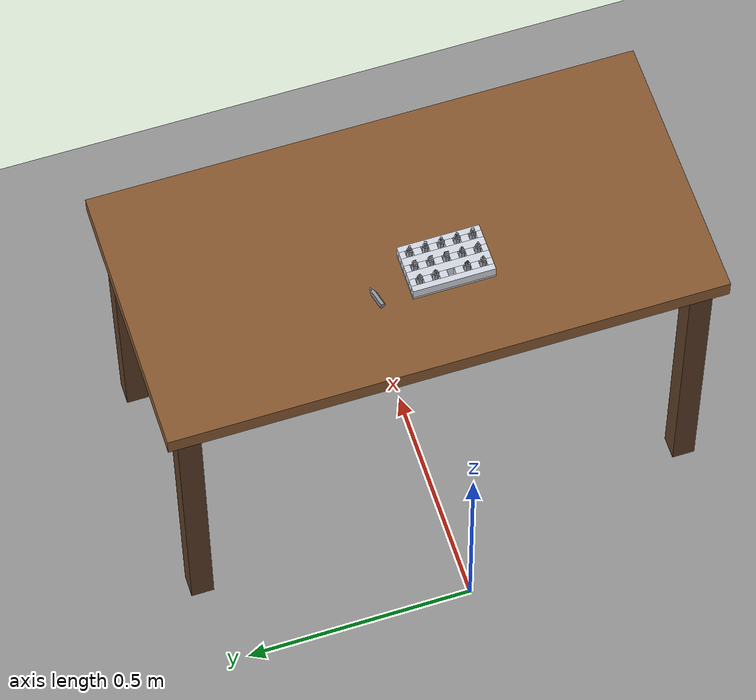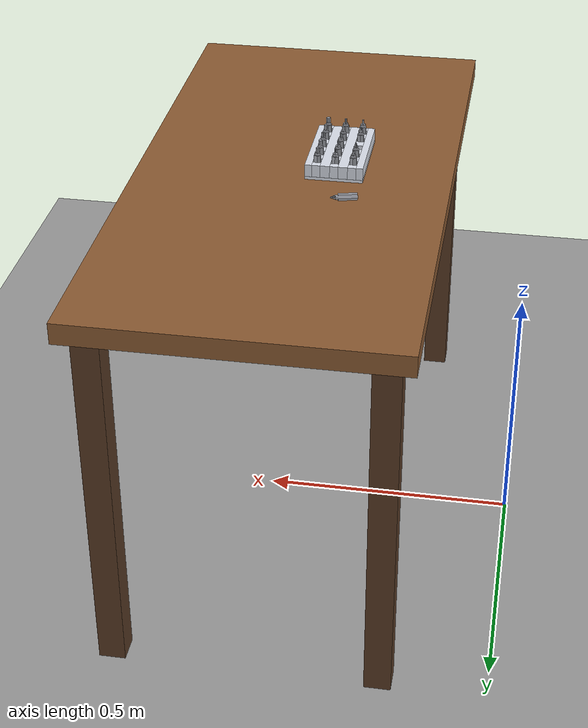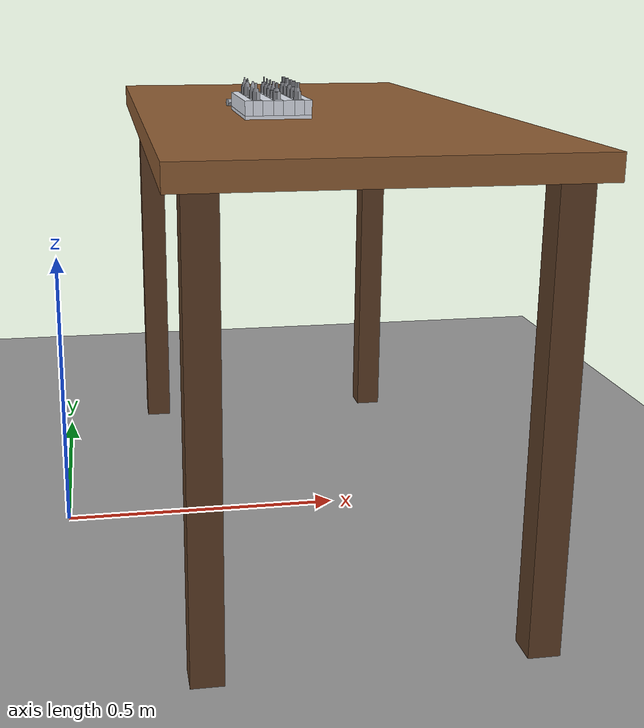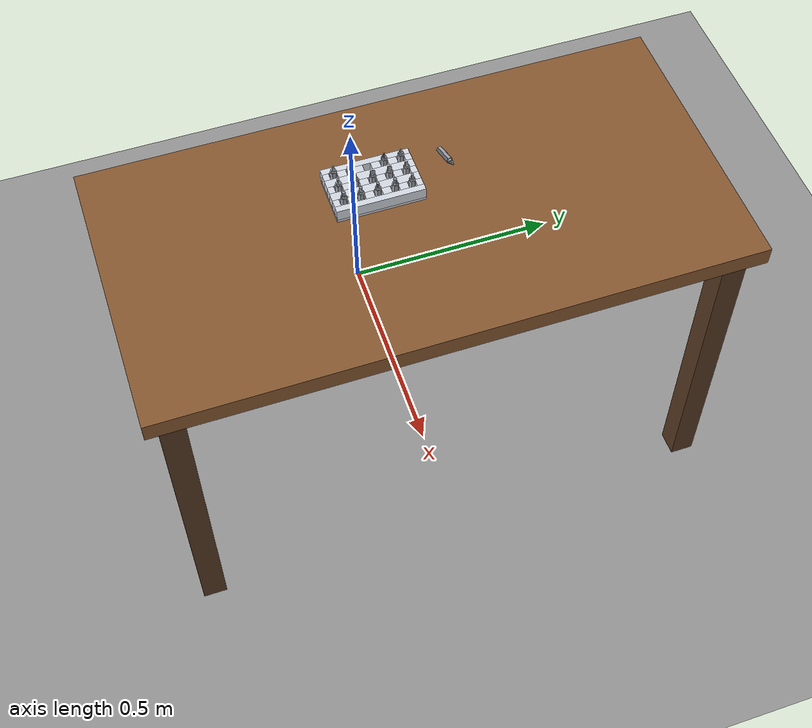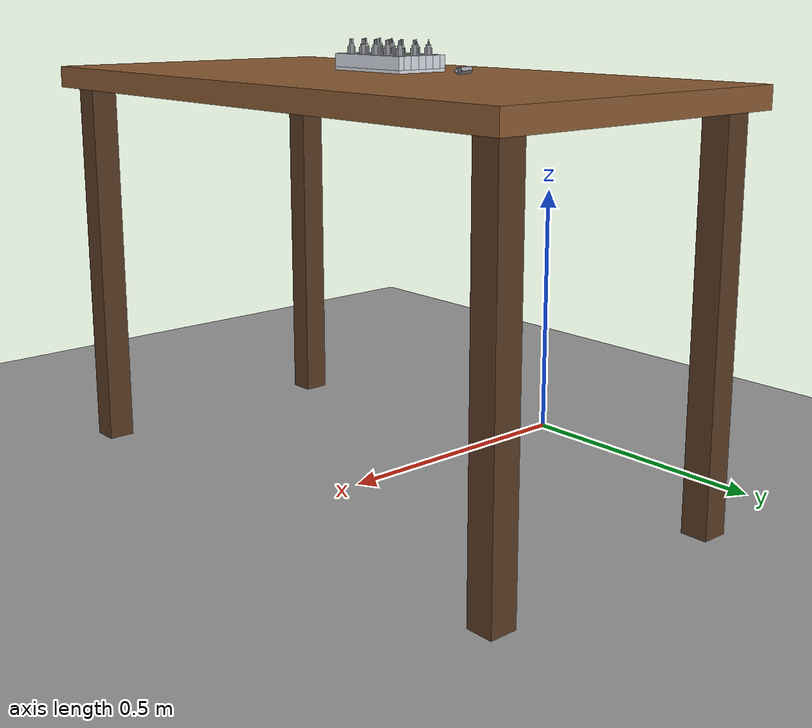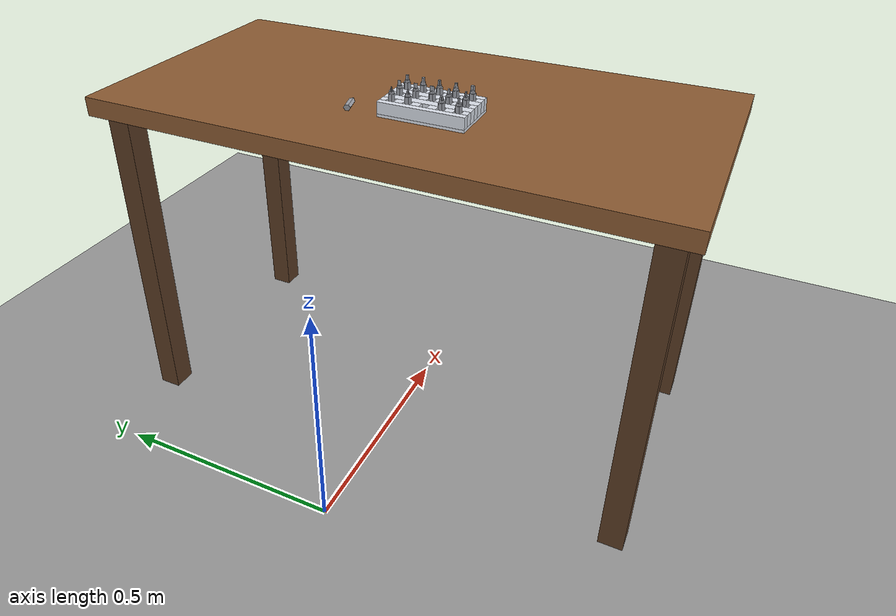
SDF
<?xml version="1.0"?>
<!-- Generated by scripts/generate_scene_assets.py - edit that script and re-run it. -->
<sdf version="1.9">
  <world name="g1_table_world">
    <physics name="1ms" type="ignored">
      <max_step_size>0.001</max_step_size>
      <real_time_factor>1.0</real_time_factor>
    </physics>

    <plugin filename="gz-sim-physics-system" name="gz::sim::systems::Physics"/>
    <plugin filename="gz-sim-user-commands-system" name="gz::sim::systems::UserCommands"/>
    <plugin filename="gz-sim-scene-broadcaster-system" name="gz::sim::systems::SceneBroadcaster"/>
    <plugin filename="gz-sim-sensors-system" name="gz::sim::systems::Sensors">
      <render_engine>ogre2</render_engine>
    </plugin>
    <plugin filename="gz-sim-imu-system" name="gz::sim::systems::Imu"/>

    <gravity>0 0 -9.81</gravity>

    <scene>
      <ambient>0.6 0.6 0.6 1</ambient>
      <background>0.75 0.8 0.85 1</background>
      <shadows>true</shadows>
    </scene>

    <light type="directional" name="sun">
      <cast_shadows>true</cast_shadows>
      <pose>0 0 10 0 0 0</pose>
      <diffuse>0.9 0.9 0.9 1</diffuse>
      <specular>0.3 0.3 0.3 1</specular>
      <direction>-0.4 0.3 -0.9</direction>
    </light>

    <model name="ground_plane">
      <static>true</static>
      <link name="link">
        <collision name="collision">
          <geometry><plane><normal>0 0 1</normal><size>50 50</size></plane></geometry>
          <surface><friction><ode><mu>1.0</mu><mu2>1.0</mu2></ode></friction></surface>
        </collision>
        <visual name="visual">
          <geometry><plane><normal>0 0 1</normal><size>50 50</size></plane></geometry>
          <material>
            <ambient>0.5 0.5 0.5 1</ambient>
            <diffuse>0.6 0.6 0.6 1</diffuse>
          </material>
        </visual>
      </link>
    </model>

    <!-- Table: 0.6 m deep (x) x 1.2 m wide (y), surface at z = 0.75 m, front edge at x = 0.15 m. -->
    <model name="table">
      <static>true</static>
      <pose>0.450 0 0 0 0 0</pose>
      <link name="link">
        <collision name="top_collision">
          <pose>0 0 0.730 0 0 0</pose>
          <geometry><box><size>0.6 1.2 0.04</size></box></geometry>
          <surface><friction><ode><mu>1.0</mu><mu2>1.0</mu2></ode></friction></surface>
        </collision>
        <visual name="top_visual">
          <pose>0 0 0.730 0 0 0</pose>
          <geometry><box><size>0.6 1.2 0.04</size></box></geometry>
          <material><ambient>0.45 0.3 0.18 1</ambient><diffuse>0.55 0.36 0.2 1</diffuse></material>
        </visual>
        <collision name="leg_fl_collision"><pose>0.250 0.550 0.355 0 0 0</pose><geometry><box><size>0.05 0.05 0.710</size></box></geometry></collision>
        <visual name="leg_fl_visual"><pose>0.250 0.550 0.355 0 0 0</pose><geometry><box><size>0.05 0.05 0.710</size></box></geometry><material><ambient>0.3 0.2 0.12 1</ambient><diffuse>0.35 0.23 0.14 1</diffuse></material></visual>
        <collision name="leg_fr_collision"><pose>0.250 -0.550 0.355 0 0 0</pose><geometry><box><size>0.05 0.05 0.710</size></box></geometry></collision>
        <visual name="leg_fr_visual"><pose>0.250 -0.550 0.355 0 0 0</pose><geometry><box><size>0.05 0.05 0.710</size></box></geometry><material><ambient>0.3 0.2 0.12 1</ambient><diffuse>0.35 0.23 0.14 1</diffuse></material></visual>
        <collision name="leg_bl_collision"><pose>-0.250 0.550 0.355 0 0 0</pose><geometry><box><size>0.05 0.05 0.710</size></box></geometry></collision>
        <visual name="leg_bl_visual"><pose>-0.250 0.550 0.355 0 0 0</pose><geometry><box><size>0.05 0.05 0.710</size></box></geometry><material><ambient>0.3 0.2 0.12 1</ambient><diffuse>0.35 0.23 0.14 1</diffuse></material></visual>
        <collision name="leg_br_collision"><pose>-0.250 -0.550 0.355 0 0 0</pose><geometry><box><size>0.05 0.05 0.710</size></box></geometry></collision>
        <visual name="leg_br_visual"><pose>-0.250 -0.550 0.355 0 0 0</pose><geometry><box><size>0.05 0.05 0.710</size></box></geometry><material><ambient>0.3 0.2 0.12 1</ambient><diffuse>0.35 0.23 0.14 1</diffuse></material></visual>
      </link>
    </model>

    <!-- Bit tray with one empty hole at (0.336, -0.060); the matching PH2 bit lies on the table. -->
    <include>
      <uri>model://bit_tray</uri>
      <name>bit_tray</name>
      <pose>0.3700 -0.0600 0.7505 0.0000 0.0000 0.0000</pose>
    </include>
    <include>
      <uri>model://screwdriver_bit_sq1</uri>
      <name>bit_sq1</name>
      <pose>0.3360 -0.1280 0.7570 0.0000 0.0000 0.0000</pose>
    </include>
    <include>
      <uri>model://screwdriver_bit_ph3</uri>
      <name>bit_ph3</name>
      <pose>0.3360 -0.0940 0.7570 0.0000 0.0000 0.0000</pose>
    </include>
    <include>
      <uri>model://screwdriver_bit_ph1</uri>
      <name>bit_ph1</name>
      <pose>0.3360 -0.0260 0.7570 0.0000 0.0000 0.0000</pose>
    </include>
    <include>
      <uri>model://screwdriver_bit_ph0</uri>
      <name>bit_ph0</name>
      <pose>0.3360 0.0080 0.7570 0.0000 0.0000 0.0000</pose>
    </include>
    <include>
      <uri>model://screwdriver_bit_h2</uri>
      <name>bit_h2</name>
      <pose>0.3700 -0.1280 0.7570 0.0000 0.0000 0.0000</pose>
    </include>
    <include>
      <uri>model://screwdriver_bit_sq2</uri>
      <name>bit_sq2</name>
      <pose>0.3700 -0.0940 0.7570 0.0000 0.0000 0.0000</pose>
    </include>
    <include>
      <uri>model://screwdriver_bit_sl5</uri>
      <name>bit_sl5</name>
      <pose>0.3700 -0.0600 0.7570 0.0000 0.0000 0.0000</pose>
    </include>
    <include>
      <uri>model://screwdriver_bit_sl4</uri>
      <name>bit_sl4</name>
      <pose>0.3700 -0.0260 0.7570 0.0000 0.0000 0.0000</pose>
    </include>
    <include>
      <uri>model://screwdriver_bit_sl3</uri>
      <name>bit_sl3</name>
      <pose>0.3700 0.0080 0.7570 0.0000 0.0000 0.0000</pose>
    </include>
    <include>
      <uri>model://screwdriver_bit_t20</uri>
      <name>bit_t20</name>
      <pose>0.4040 -0.1280 0.7570 0.0000 0.0000 0.0000</pose>
    </include>
    <include>
      <uri>model://screwdriver_bit_t15</uri>
      <name>bit_t15</name>
      <pose>0.4040 -0.0940 0.7570 0.0000 0.0000 0.0000</pose>
    </include>
    <include>
      <uri>model://screwdriver_bit_t10</uri>
      <name>bit_t10</name>
      <pose>0.4040 -0.0600 0.7570 0.0000 0.0000 0.0000</pose>
    </include>
    <include>
      <uri>model://screwdriver_bit_h4</uri>
      <name>bit_h4</name>
      <pose>0.4040 -0.0260 0.7570 0.0000 0.0000 0.0000</pose>
    </include>
    <include>
      <uri>model://screwdriver_bit_h3</uri>
      <name>bit_h3</name>
      <pose>0.4040 0.0080 0.7570 0.0000 0.0000 0.0000</pose>
    </include>
    <include>
      <uri>model://screwdriver_bit_ph2</uri>
      <name>bit_ph2_loose</name>
      <pose>0.3158 0.0938 0.7565 0.0000 1.5708 0.2500</pose>
    </include>
  </world>
</sdf>

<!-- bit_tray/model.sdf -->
<sdf version="1.9">
  <model name="bit_tray">
    <static>true</static>
    <link name="link">
      <inertial>
        <pose>0 0 0.0150 0 0 0</pose>
        <mass>0.3</mass>
        <inertia><ixx>8.146e-04</ixx><iyy>3.250e-04</iyy><izz>1.095e-03</izz><ixy>0</ixy><ixz>0</ixz><iyz>0</iyz></inertia>
      </inertial>
      <collision name="c0"><pose>0.0000 0.0000 0.0030 0 0 0</pose><geometry><box><size>0.1100 0.1780 0.0060</size></box></geometry>
        <surface><friction><ode><mu>0.8</mu><mu2>0.8</mu2></ode></friction></surface>
      </collision>
      <visual name="v0"><pose>0.0000 0.0000 0.0030 0 0 0</pose><geometry><box><size>0.1100 0.1780 0.0060</size></box></geometry>
        <material><ambient>0.72 0.74 0.78 1</ambient><diffuse>0.86 0.88 0.92 1</diffuse><specular>0.3 0.3 0.3 1</specular></material>
      </visual>
      <collision name="c1"><pose>-0.0485 0.0000 0.0180 0 0 0</pose><geometry><box><size>0.0130 0.1780 0.0240</size></box></geometry>
        <surface><friction><ode><mu>0.8</mu><mu2>0.8</mu2></ode></friction></surface>
      </collision>
      <visual name="v1"><pose>-0.0485 0.0000 0.0180 0 0 0</pose><geometry><box><size>0.0130 0.1780 0.0240</size></box></geometry>
        <material><ambient>0.72 0.74 0.78 1</ambient><diffuse>0.86 0.88 0.92 1</diffuse><specular>0.3 0.3 0.3 1</specular></material>
      </visual>
      <collision name="c2"><pose>-0.0170 0.0000 0.0180 0 0 0</pose><geometry><box><size>0.0180 0.1780 0.0240</size></box></geometry>
        <surface><friction><ode><mu>0.8</mu><mu2>0.8</mu2></ode></friction></surface>
      </collision>
      <visual name="v2"><pose>-0.0170 0.0000 0.0180 0 0 0</pose><geometry><box><size>0.0180 0.1780 0.0240</size></box></geometry>
        <material><ambient>0.72 0.74 0.78 1</ambient><diffuse>0.86 0.88 0.92 1</diffuse><specular>0.3 0.3 0.3 1</specular></material>
      </visual>
      <collision name="c3"><pose>0.0170 0.0000 0.0180 0 0 0</pose><geometry><box><size>0.0180 0.1780 0.0240</size></box></geometry>
        <surface><friction><ode><mu>0.8</mu><mu2>0.8</mu2></ode></friction></surface>
      </collision>
      <visual name="v3"><pose>0.0170 0.0000 0.0180 0 0 0</pose><geometry><box><size>0.0180 0.1780 0.0240</size></box></geometry>
        <material><ambient>0.72 0.74 0.78 1</ambient><diffuse>0.86 0.88 0.92 1</diffuse><specular>0.3 0.3 0.3 1</specular></material>
      </visual>
      <collision name="c4"><pose>0.0485 0.0000 0.0180 0 0 0</pose><geometry><box><size>0.0130 0.1780 0.0240</size></box></geometry>
        <surface><friction><ode><mu>0.8</mu><mu2>0.8</mu2></ode></friction></surface>
      </collision>
      <visual name="v4"><pose>0.0485 0.0000 0.0180 0 0 0</pose><geometry><box><size>0.0130 0.1780 0.0240</size></box></geometry>
        <material><ambient>0.72 0.74 0.78 1</ambient><diffuse>0.86 0.88 0.92 1</diffuse><specular>0.3 0.3 0.3 1</specular></material>
      </visual>
      <collision name="c5"><pose>-0.0340 -0.0825 0.0180 0 0 0</pose><geometry><box><size>0.0160 0.0130 0.0240</size></box></geometry>
        <surface><friction><ode><mu>0.8</mu><mu2>0.8</mu2></ode></friction></surface>
      </collision>
      <visual name="v5"><pose>-0.0340 -0.0825 0.0180 0 0 0</pose><geometry><box><size>0.0160 0.0130 0.0240</size></box></geometry>
        <material><ambient>0.72 0.74 0.78 1</ambient><diffuse>0.86 0.88 0.92 1</diffuse><specular>0.3 0.3 0.3 1</specular></material>
      </visual>
      <collision name="c6"><pose>-0.0340 -0.0510 0.0180 0 0 0</pose><geometry><box><size>0.0160 0.0180 0.0240</size></box></geometry>
        <surface><friction><ode><mu>0.8</mu><mu2>0.8</mu2></ode></friction></surface>
      </collision>
      <visual name="v6"><pose>-0.0340 -0.0510 0.0180 0 0 0</pose><geometry><box><size>0.0160 0.0180 0.0240</size></box></geometry>
        <material><ambient>0.72 0.74 0.78 1</ambient><diffuse>0.86 0.88 0.92 1</diffuse><specular>0.3 0.3 0.3 1</specular></material>
      </visual>
      <collision name="c7"><pose>-0.0340 -0.0170 0.0180 0 0 0</pose><geometry><box><size>0.0160 0.0180 0.0240</size></box></geometry>
        <surface><friction><ode><mu>0.8</mu><mu2>0.8</mu2></ode></friction></surface>
      </collision>
      <visual name="v7"><pose>-0.0340 -0.0170 0.0180 0 0 0</pose><geometry><box><size>0.0160 0.0180 0.0240</size></box></geometry>
        <material><ambient>0.72 0.74 0.78 1</ambient><diffuse>0.86 0.88 0.92 1</diffuse><specular>0.3 0.3 0.3 1</specular></material>
      </visual>
      <collision name="c8"><pose>-0.0340 0.0170 0.0180 0 0 0</pose><geometry><box><size>0.0160 0.0180 0.0240</size></box></geometry>
        <surface><friction><ode><mu>0.8</mu><mu2>0.8</mu2></ode></friction></surface>
      </collision>
      <visual name="v8"><pose>-0.0340 0.0170 0.0180 0 0 0</pose><geometry><box><size>0.0160 0.0180 0.0240</size></box></geometry>
        <material><ambient>0.72 0.74 0.78 1</ambient><diffuse>0.86 0.88 0.92 1</diffuse><specular>0.3 0.3 0.3 1</specular></material>
      </visual>
      <collision name="c9"><pose>-0.0340 0.0510 0.0180 0 0 0</pose><geometry><box><size>0.0160 0.0180 0.0240</size></box></geometry>
        <surface><friction><ode><mu>0.8</mu><mu2>0.8</mu2></ode></friction></surface>
      </collision>
      <visual name="v9"><pose>-0.0340 0.0510 0.0180 0 0 0</pose><geometry><box><size>0.0160 0.0180 0.0240</size></box></geometry>
        <material><ambient>0.72 0.74 0.78 1</ambient><diffuse>0.86 0.88 0.92 1</diffuse><specular>0.3 0.3 0.3 1</specular></material>
      </visual>
      <collision name="c10"><pose>-0.0340 0.0825 0.0180 0 0 0</pose><geometry><box><size>0.0160 0.0130 0.0240</size></box></geometry>
        <surface><friction><ode><mu>0.8</mu><mu2>0.8</mu2></ode></friction></surface>
      </collision>
      <visual name="v10"><pose>-0.0340 0.0825 0.0180 0 0 0</pose><geometry><box><size>0.0160 0.0130 0.0240</size></box></geometry>
        <material><ambient>0.72 0.74 0.78 1</ambient><diffuse>0.86 0.88 0.92 1</diffuse><specular>0.3 0.3 0.3 1</specular></material>
      </visual>
      <collision name="c11"><pose>0.0000 -0.0825 0.0180 0 0 0</pose><geometry><box><size>0.0160 0.0130 0.0240</size></box></geometry>
        <surface><friction><ode><mu>0.8</mu><mu2>0.8</mu2></ode></friction></surface>
      </collision>
      <visual name="v11"><pose>0.0000 -0.0825 0.0180 0 0 0</pose><geometry><box><size>0.0160 0.0130 0.0240</size></box></geometry>
        <material><ambient>0.72 0.74 0.78 1</ambient><diffuse>0.86 0.88 0.92 1</diffuse><specular>0.3 0.3 0.3 1</specular></material>
      </visual>
      <collision name="c12"><pose>0.0000 -0.0510 0.0180 0 0 0</pose><geometry><box><size>0.0160 0.0180 0.0240</size></box></geometry>
        <surface><friction><ode><mu>0.8</mu><mu2>0.8</mu2></ode></friction></surface>
      </collision>
      <visual name="v12"><pose>0.0000 -0.0510 0.0180 0 0 0</pose><geometry><box><size>0.0160 0.0180 0.0240</size></box></geometry>
        <material><ambient>0.72 0.74 0.78 1</ambient><diffuse>0.86 0.88 0.92 1</diffuse><specular>0.3 0.3 0.3 1</specular></material>
      </visual>
      <collision name="c13"><pose>0.0000 -0.0170 0.0180 0 0 0</pose><geometry><box><size>0.0160 0.0180 0.0240</size></box></geometry>
        <surface><friction><ode><mu>0.8</mu><mu2>0.8</mu2></ode></friction></surface>
      </collision>
      <visual name="v13"><pose>0.0000 -0.0170 0.0180 0 0 0</pose><geometry><box><size>0.0160 0.0180 0.0240</size></box></geometry>
        <material><ambient>0.72 0.74 0.78 1</ambient><diffuse>0.86 0.88 0.92 1</diffuse><specular>0.3 0.3 0.3 1</specular></material>
      </visual>
      <collision name="c14"><pose>0.0000 0.0170 0.0180 0 0 0</pose><geometry><box><size>0.0160 0.0180 0.0240</size></box></geometry>
        <surface><friction><ode><mu>0.8</mu><mu2>0.8</mu2></ode></friction></surface>
      </collision>
      <visual name="v14"><pose>0.0000 0.0170 0.0180 0 0 0</pose><geometry><box><size>0.0160 0.0180 0.0240</size></box></geometry>
        <material><ambient>0.72 0.74 0.78 1</ambient><diffuse>0.86 0.88 0.92 1</diffuse><specular>0.3 0.3 0.3 1</specular></material>
      </visual>
      <collision name="c15"><pose>0.0000 0.0510 0.0180 0 0 0</pose><geometry><box><size>0.0160 0.0180 0.0240</size></box></geometry>
        <surface><friction><ode><mu>0.8</mu><mu2>0.8</mu2></ode></friction></surface>
      </collision>
      <visual name="v15"><pose>0.0000 0.0510 0.0180 0 0 0</pose><geometry><box><size>0.0160 0.0180 0.0240</size></box></geometry>
        <material><ambient>0.72 0.74 0.78 1</ambient><diffuse>0.86 0.88 0.92 1</diffuse><specular>0.3 0.3 0.3 1</specular></material>
      </visual>
      <collision name="c16"><pose>0.0000 0.0825 0.0180 0 0 0</pose><geometry><box><size>0.0160 0.0130 0.0240</size></box></geometry>
        <surface><friction><ode><mu>0.8</mu><mu2>0.8</mu2></ode></friction></surface>
      </collision>
      <visual name="v16"><pose>0.0000 0.0825 0.0180 0 0 0</pose><geometry><box><size>0.0160 0.0130 0.0240</size></box></geometry>
        <material><ambient>0.72 0.74 0.78 1</ambient><diffuse>0.86 0.88 0.92 1</diffuse><specular>0.3 0.3 0.3 1</specular></material>
      </visual>
      <collision name="c17"><pose>0.0340 -0.0825 0.0180 0 0 0</pose><geometry><box><size>0.0160 0.0130 0.0240</size></box></geometry>
        <surface><friction><ode><mu>0.8</mu><mu2>0.8</mu2></ode></friction></surface>
      </collision>
      <visual name="v17"><pose>0.0340 -0.0825 0.0180 0 0 0</pose><geometry><box><size>0.0160 0.0130 0.0240</size></box></geometry>
        <material><ambient>0.72 0.74 0.78 1</ambient><diffuse>0.86 0.88 0.92 1</diffuse><specular>0.3 0.3 0.3 1</specular></material>
      </visual>
      <collision name="c18"><pose>0.0340 -0.0510 0.0180 0 0 0</pose><geometry><box><size>0.0160 0.0180 0.0240</size></box></geometry>
        <surface><friction><ode><mu>0.8</mu><mu2>0.8</mu2></ode></friction></surface>
      </collision>
      <visual name="v18"><pose>0.0340 -0.0510 0.0180 0 0 0</pose><geometry><box><size>0.0160 0.0180 0.0240</size></box></geometry>
        <material><ambient>0.72 0.74 0.78 1</ambient><diffuse>0.86 0.88 0.92 1</diffuse><specular>0.3 0.3 0.3 1</specular></material>
      </visual>
      <collision name="c19"><pose>0.0340 -0.0170 0.0180 0 0 0</pose><geometry><box><size>0.0160 0.0180 0.0240</size></box></geometry>
        <surface><friction><ode><mu>0.8</mu><mu2>0.8</mu2></ode></friction></surface>
      </collision>
      <visual name="v19"><pose>0.0340 -0.0170 0.0180 0 0 0</pose><geometry><box><size>0.0160 0.0180 0.0240</size></box></geometry>
        <material><ambient>0.72 0.74 0.78 1</ambient><diffuse>0.86 0.88 0.92 1</diffuse><specular>0.3 0.3 0.3 1</specular></material>
      </visual>
      <collision name="c20"><pose>0.0340 0.0170 0.0180 0 0 0</pose><geometry><box><size>0.0160 0.0180 0.0240</size></box></geometry>
        <surface><friction><ode><mu>0.8</mu><mu2>0.8</mu2></ode></friction></surface>
      </collision>
      <visual name="v20"><pose>0.0340 0.0170 0.0180 0 0 0</pose><geometry><box><size>0.0160 0.0180 0.0240</size></box></geometry>
        <material><ambient>0.72 0.74 0.78 1</ambient><diffuse>0.86 0.88 0.92 1</diffuse><specular>0.3 0.3 0.3 1</specular></material>
      </visual>
      <collision name="c21"><pose>0.0340 0.0510 0.0180 0 0 0</pose><geometry><box><size>0.0160 0.0180 0.0240</size></box></geometry>
        <surface><friction><ode><mu>0.8</mu><mu2>0.8</mu2></ode></friction></surface>
      </collision>
      <visual name="v21"><pose>0.0340 0.0510 0.0180 0 0 0</pose><geometry><box><size>0.0160 0.0180 0.0240</size></box></geometry>
        <material><ambient>0.72 0.74 0.78 1</ambient><diffuse>0.86 0.88 0.92 1</diffuse><specular>0.3 0.3 0.3 1</specular></material>
      </visual>
      <collision name="c22"><pose>0.0340 0.0825 0.0180 0 0 0</pose><geometry><box><size>0.0160 0.0130 0.0240</size></box></geometry>
        <surface><friction><ode><mu>0.8</mu><mu2>0.8</mu2></ode></friction></surface>
      </collision>
      <visual name="v22"><pose>0.0340 0.0825 0.0180 0 0 0</pose><geometry><box><size>0.0160 0.0130 0.0240</size></box></geometry>
        <material><ambient>0.72 0.74 0.78 1</ambient><diffuse>0.86 0.88 0.92 1</diffuse><specular>0.3 0.3 0.3 1</specular></material>
      </visual>
    </link>
  </model>
</sdf>

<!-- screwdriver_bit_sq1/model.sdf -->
<sdf version="1.9">
  <model name="screwdriver_bit_sq1">
    <link name="link">
      <inertial>
        <pose>0 0 0.0250 0 0 0</pose>
        <mass>0.042</mass>
        <inertia><ixx>9.254e-06</ixx><iyy>9.254e-06</iyy><izz>1.008e-06</izz><ixy>0</ixy><ixz>0</ixz><iyz>0</iyz></inertia>
      </inertial>
      <collision name="shank_0">
        <pose>0 0 0.018 0 0 0.000000</pose>
        <geometry><box><size>0.012 0.006928 0.036</size></box></geometry>
        <surface><friction><ode><mu>0.8</mu><mu2>0.8</mu2></ode></friction></surface>
      </collision>
      <collision name="shank_1">
        <pose>0 0 0.018 0 0 1.047198</pose>
        <geometry><box><size>0.012 0.006928 0.036</size></box></geometry>
        <surface><friction><ode><mu>0.8</mu><mu2>0.8</mu2></ode></friction></surface>
      </collision>
      <collision name="shank_2">
        <pose>0 0 0.018 0 0 2.094395</pose>
        <geometry><box><size>0.012 0.006928 0.036</size></box></geometry>
        <surface><friction><ode><mu>0.8</mu><mu2>0.8</mu2></ode></friction></surface>
      </collision>
      <collision name="tip">
        <pose>0 0 0.043 0 0 0</pose>
        <geometry><cylinder><radius>0.0045</radius><length>0.014000000000000005</length></cylinder></geometry>
        <surface><friction><ode><mu>0.8</mu><mu2>0.8</mu2></ode></friction></surface>
      </collision>
      <visual name="visual">
        <geometry><mesh><uri>model://screwdriver_bit_sq1/meshes/bit_sq1.stl</uri></mesh></geometry>
        <material>
          <ambient>0.45 0.46 0.48 1</ambient>
          <diffuse>0.62 0.63 0.66 1</diffuse>
          <specular>0.8 0.8 0.8 1</specular>
        </material>
      </visual>
    </link>
  </model>
</sdf>

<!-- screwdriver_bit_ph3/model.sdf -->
<sdf version="1.9">
  <model name="screwdriver_bit_ph3">
    <link name="link">
      <inertial>
        <pose>0 0 0.0250 0 0 0</pose>
        <mass>0.042</mass>
        <inertia><ixx>9.254e-06</ixx><iyy>9.254e-06</iyy><izz>1.008e-06</izz><ixy>0</ixy><ixz>0</ixz><iyz>0</iyz></inertia>
      </inertial>
      <collision name="shank_0">
        <pose>0 0 0.018 0 0 0.000000</pose>
        <geometry><box><size>0.012 0.006928 0.036</size></box></geometry>
        <surface><friction><ode><mu>0.8</mu><mu2>0.8</mu2></ode></friction></surface>
      </collision>
      <collision name="shank_1">
        <pose>0 0 0.018 0 0 1.047198</pose>
        <geometry><box><size>0.012 0.006928 0.036</size></box></geometry>
        <surface><friction><ode><mu>0.8</mu><mu2>0.8</mu2></ode></friction></surface>
      </collision>
      <collision name="shank_2">
        <pose>0 0 0.018 0 0 2.094395</pose>
        <geometry><box><size>0.012 0.006928 0.036</size></box></geometry>
        <surface><friction><ode><mu>0.8</mu><mu2>0.8</mu2></ode></friction></surface>
      </collision>
      <collision name="tip">
        <pose>0 0 0.043 0 0 0</pose>
        <geometry><cylinder><radius>0.0045</radius><length>0.014000000000000005</length></cylinder></geometry>
        <surface><friction><ode><mu>0.8</mu><mu2>0.8</mu2></ode></friction></surface>
      </collision>
      <visual name="visual">
        <geometry><mesh><uri>model://screwdriver_bit_ph3/meshes/bit_ph3.stl</uri></mesh></geometry>
        <material>
          <ambient>0.45 0.46 0.48 1</ambient>
          <diffuse>0.62 0.63 0.66 1</diffuse>
          <specular>0.8 0.8 0.8 1</specular>
        </material>
      </visual>
    </link>
  </model>
</sdf>

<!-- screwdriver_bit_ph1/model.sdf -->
<sdf version="1.9">
  <model name="screwdriver_bit_ph1">
    <link name="link">
      <inertial>
        <pose>0 0 0.0250 0 0 0</pose>
        <mass>0.042</mass>
        <inertia><ixx>9.254e-06</ixx><iyy>9.254e-06</iyy><izz>1.008e-06</izz><ixy>0</ixy><ixz>0</ixz><iyz>0</iyz></inertia>
      </inertial>
      <collision name="shank_0">
        <pose>0 0 0.018 0 0 0.000000</pose>
        <geometry><box><size>0.012 0.006928 0.036</size></box></geometry>
        <surface><friction><ode><mu>0.8</mu><mu2>0.8</mu2></ode></friction></surface>
      </collision>
      <collision name="shank_1">
        <pose>0 0 0.018 0 0 1.047198</pose>
        <geometry><box><size>0.012 0.006928 0.036</size></box></geometry>
        <surface><friction><ode><mu>0.8</mu><mu2>0.8</mu2></ode></friction></surface>
      </collision>
      <collision name="shank_2">
        <pose>0 0 0.018 0 0 2.094395</pose>
        <geometry><box><size>0.012 0.006928 0.036</size></box></geometry>
        <surface><friction><ode><mu>0.8</mu><mu2>0.8</mu2></ode></friction></surface>
      </collision>
      <collision name="tip">
        <pose>0 0 0.043 0 0 0</pose>
        <geometry><cylinder><radius>0.0045</radius><length>0.014000000000000005</length></cylinder></geometry>
        <surface><friction><ode><mu>0.8</mu><mu2>0.8</mu2></ode></friction></surface>
      </collision>
      <visual name="visual">
        <geometry><mesh><uri>model://screwdriver_bit_ph1/meshes/bit_ph1.stl</uri></mesh></geometry>
        <material>
          <ambient>0.45 0.46 0.48 1</ambient>
          <diffuse>0.62 0.63 0.66 1</diffuse>
          <specular>0.8 0.8 0.8 1</specular>
        </material>
      </visual>
    </link>
  </model>
</sdf>

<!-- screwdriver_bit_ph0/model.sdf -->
<sdf version="1.9">
  <model name="screwdriver_bit_ph0">
    <link name="link">
      <inertial>
        <pose>0 0 0.0250 0 0 0</pose>
        <mass>0.042</mass>
        <inertia><ixx>9.254e-06</ixx><iyy>9.254e-06</iyy><izz>1.008e-06</izz><ixy>0</ixy><ixz>0</ixz><iyz>0</iyz></inertia>
      </inertial>
      <collision name="shank_0">
        <pose>0 0 0.018 0 0 0.000000</pose>
        <geometry><box><size>0.012 0.006928 0.036</size></box></geometry>
        <surface><friction><ode><mu>0.8</mu><mu2>0.8</mu2></ode></friction></surface>
      </collision>
      <collision name="shank_1">
        <pose>0 0 0.018 0 0 1.047198</pose>
        <geometry><box><size>0.012 0.006928 0.036</size></box></geometry>
        <surface><friction><ode><mu>0.8</mu><mu2>0.8</mu2></ode></friction></surface>
      </collision>
      <collision name="shank_2">
        <pose>0 0 0.018 0 0 2.094395</pose>
        <geometry><box><size>0.012 0.006928 0.036</size></box></geometry>
        <surface><friction><ode><mu>0.8</mu><mu2>0.8</mu2></ode></friction></surface>
      </collision>
      <collision name="tip">
        <pose>0 0 0.043 0 0 0</pose>
        <geometry><cylinder><radius>0.0045</radius><length>0.014000000000000005</length></cylinder></geometry>
        <surface><friction><ode><mu>0.8</mu><mu2>0.8</mu2></ode></friction></surface>
      </collision>
      <visual name="visual">
        <geometry><mesh><uri>model://screwdriver_bit_ph0/meshes/bit_ph0.stl</uri></mesh></geometry>
        <material>
          <ambient>0.45 0.46 0.48 1</ambient>
          <diffuse>0.62 0.63 0.66 1</diffuse>
          <specular>0.8 0.8 0.8 1</specular>
        </material>
      </visual>
    </link>
  </model>
</sdf>

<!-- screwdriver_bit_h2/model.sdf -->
<sdf version="1.9">
  <model name="screwdriver_bit_h2">
    <link name="link">
      <inertial>
        <pose>0 0 0.0250 0 0 0</pose>
        <mass>0.042</mass>
        <inertia><ixx>9.254e-06</ixx><iyy>9.254e-06</iyy><izz>1.008e-06</izz><ixy>0</ixy><ixz>0</ixz><iyz>0</iyz></inertia>
      </inertial>
      <collision name="shank_0">
        <pose>0 0 0.018 0 0 0.000000</pose>
        <geometry><box><size>0.012 0.006928 0.036</size></box></geometry>
        <surface><friction><ode><mu>0.8</mu><mu2>0.8</mu2></ode></friction></surface>
      </collision>
      <collision name="shank_1">
        <pose>0 0 0.018 0 0 1.047198</pose>
        <geometry><box><size>0.012 0.006928 0.036</size></box></geometry>
        <surface><friction><ode><mu>0.8</mu><mu2>0.8</mu2></ode></friction></surface>
      </collision>
      <collision name="shank_2">
        <pose>0 0 0.018 0 0 2.094395</pose>
        <geometry><box><size>0.012 0.006928 0.036</size></box></geometry>
        <surface><friction><ode><mu>0.8</mu><mu2>0.8</mu2></ode></friction></surface>
      </collision>
      <collision name="tip">
        <pose>0 0 0.043 0 0 0</pose>
        <geometry><cylinder><radius>0.0045</radius><length>0.014000000000000005</length></cylinder></geometry>
        <surface><friction><ode><mu>0.8</mu><mu2>0.8</mu2></ode></friction></surface>
      </collision>
      <visual name="visual">
        <geometry><mesh><uri>model://screwdriver_bit_h2/meshes/bit_h2.stl</uri></mesh></geometry>
        <material>
          <ambient>0.45 0.46 0.48 1</ambient>
          <diffuse>0.62 0.63 0.66 1</diffuse>
          <specular>0.8 0.8 0.8 1</specular>
        </material>
      </visual>
    </link>
  </model>
</sdf>

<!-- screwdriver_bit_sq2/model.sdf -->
<sdf version="1.9">
  <model name="screwdriver_bit_sq2">
    <link name="link">
      <inertial>
        <pose>0 0 0.0250 0 0 0</pose>
        <mass>0.042</mass>
        <inertia><ixx>9.254e-06</ixx><iyy>9.254e-06</iyy><izz>1.008e-06</izz><ixy>0</ixy><ixz>0</ixz><iyz>0</iyz></inertia>
      </inertial>
      <collision name="shank_0">
        <pose>0 0 0.018 0 0 0.000000</pose>
        <geometry><box><size>0.012 0.006928 0.036</size></box></geometry>
        <surface><friction><ode><mu>0.8</mu><mu2>0.8</mu2></ode></friction></surface>
      </collision>
      <collision name="shank_1">
        <pose>0 0 0.018 0 0 1.047198</pose>
        <geometry><box><size>0.012 0.006928 0.036</size></box></geometry>
        <surface><friction><ode><mu>0.8</mu><mu2>0.8</mu2></ode></friction></surface>
      </collision>
      <collision name="shank_2">
        <pose>0 0 0.018 0 0 2.094395</pose>
        <geometry><box><size>0.012 0.006928 0.036</size></box></geometry>
        <surface><friction><ode><mu>0.8</mu><mu2>0.8</mu2></ode></friction></surface>
      </collision>
      <collision name="tip">
        <pose>0 0 0.043 0 0 0</pose>
        <geometry><cylinder><radius>0.0045</radius><length>0.014000000000000005</length></cylinder></geometry>
        <surface><friction><ode><mu>0.8</mu><mu2>0.8</mu2></ode></friction></surface>
      </collision>
      <visual name="visual">
        <geometry><mesh><uri>model://screwdriver_bit_sq2/meshes/bit_sq2.stl</uri></mesh></geometry>
        <material>
          <ambient>0.45 0.46 0.48 1</ambient>
          <diffuse>0.62 0.63 0.66 1</diffuse>
          <specular>0.8 0.8 0.8 1</specular>
        </material>
      </visual>
    </link>
  </model>
</sdf>

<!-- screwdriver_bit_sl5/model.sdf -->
<sdf version="1.9">
  <model name="screwdriver_bit_sl5">
    <link name="link">
      <inertial>
        <pose>0 0 0.0250 0 0 0</pose>
        <mass>0.042</mass>
        <inertia><ixx>9.254e-06</ixx><iyy>9.254e-06</iyy><izz>1.008e-06</izz><ixy>0</ixy><ixz>0</ixz><iyz>0</iyz></inertia>
      </inertial>
      <collision name="shank_0">
        <pose>0 0 0.018 0 0 0.000000</pose>
        <geometry><box><size>0.012 0.006928 0.036</size></box></geometry>
        <surface><friction><ode><mu>0.8</mu><mu2>0.8</mu2></ode></friction></surface>
      </collision>
      <collision name="shank_1">
        <pose>0 0 0.018 0 0 1.047198</pose>
        <geometry><box><size>0.012 0.006928 0.036</size></box></geometry>
        <surface><friction><ode><mu>0.8</mu><mu2>0.8</mu2></ode></friction></surface>
      </collision>
      <collision name="shank_2">
        <pose>0 0 0.018 0 0 2.094395</pose>
        <geometry><box><size>0.012 0.006928 0.036</size></box></geometry>
        <surface><friction><ode><mu>0.8</mu><mu2>0.8</mu2></ode></friction></surface>
      </collision>
      <collision name="tip">
        <pose>0 0 0.043 0 0 0</pose>
        <geometry><cylinder><radius>0.0045</radius><length>0.014000000000000005</length></cylinder></geometry>
        <surface><friction><ode><mu>0.8</mu><mu2>0.8</mu2></ode></friction></surface>
      </collision>
      <visual name="visual">
        <geometry><mesh><uri>model://screwdriver_bit_sl5/meshes/bit_sl5.stl</uri></mesh></geometry>
        <material>
          <ambient>0.45 0.46 0.48 1</ambient>
          <diffuse>0.62 0.63 0.66 1</diffuse>
          <specular>0.8 0.8 0.8 1</specular>
        </material>
      </visual>
    </link>
  </model>
</sdf>

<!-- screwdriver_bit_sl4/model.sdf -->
<sdf version="1.9">
  <model name="screwdriver_bit_sl4">
    <link name="link">
      <inertial>
        <pose>0 0 0.0250 0 0 0</pose>
        <mass>0.042</mass>
        <inertia><ixx>9.254e-06</ixx><iyy>9.254e-06</iyy><izz>1.008e-06</izz><ixy>0</ixy><ixz>0</ixz><iyz>0</iyz></inertia>
      </inertial>
      <collision name="shank_0">
        <pose>0 0 0.018 0 0 0.000000</pose>
        <geometry><box><size>0.012 0.006928 0.036</size></box></geometry>
        <surface><friction><ode><mu>0.8</mu><mu2>0.8</mu2></ode></friction></surface>
      </collision>
      <collision name="shank_1">
        <pose>0 0 0.018 0 0 1.047198</pose>
        <geometry><box><size>0.012 0.006928 0.036</size></box></geometry>
        <surface><friction><ode><mu>0.8</mu><mu2>0.8</mu2></ode></friction></surface>
      </collision>
      <collision name="shank_2">
        <pose>0 0 0.018 0 0 2.094395</pose>
        <geometry><box><size>0.012 0.006928 0.036</size></box></geometry>
        <surface><friction><ode><mu>0.8</mu><mu2>0.8</mu2></ode></friction></surface>
      </collision>
      <collision name="tip">
        <pose>0 0 0.043 0 0 0</pose>
        <geometry><cylinder><radius>0.0045</radius><length>0.014000000000000005</length></cylinder></geometry>
        <surface><friction><ode><mu>0.8</mu><mu2>0.8</mu2></ode></friction></surface>
      </collision>
      <visual name="visual">
        <geometry><mesh><uri>model://screwdriver_bit_sl4/meshes/bit_sl4.stl</uri></mesh></geometry>
        <material>
          <ambient>0.45 0.46 0.48 1</ambient>
          <diffuse>0.62 0.63 0.66 1</diffuse>
          <specular>0.8 0.8 0.8 1</specular>
        </material>
      </visual>
    </link>
  </model>
</sdf>

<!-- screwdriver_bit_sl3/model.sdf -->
<sdf version="1.9">
  <model name="screwdriver_bit_sl3">
    <link name="link">
      <inertial>
        <pose>0 0 0.0250 0 0 0</pose>
        <mass>0.042</mass>
        <inertia><ixx>9.254e-06</ixx><iyy>9.254e-06</iyy><izz>1.008e-06</izz><ixy>0</ixy><ixz>0</ixz><iyz>0</iyz></inertia>
      </inertial>
      <collision name="shank_0">
        <pose>0 0 0.018 0 0 0.000000</pose>
        <geometry><box><size>0.012 0.006928 0.036</size></box></geometry>
        <surface><friction><ode><mu>0.8</mu><mu2>0.8</mu2></ode></friction></surface>
      </collision>
      <collision name="shank_1">
        <pose>0 0 0.018 0 0 1.047198</pose>
        <geometry><box><size>0.012 0.006928 0.036</size></box></geometry>
        <surface><friction><ode><mu>0.8</mu><mu2>0.8</mu2></ode></friction></surface>
      </collision>
      <collision name="shank_2">
        <pose>0 0 0.018 0 0 2.094395</pose>
        <geometry><box><size>0.012 0.006928 0.036</size></box></geometry>
        <surface><friction><ode><mu>0.8</mu><mu2>0.8</mu2></ode></friction></surface>
      </collision>
      <collision name="tip">
        <pose>0 0 0.043 0 0 0</pose>
        <geometry><cylinder><radius>0.0045</radius><length>0.014000000000000005</length></cylinder></geometry>
        <surface><friction><ode><mu>0.8</mu><mu2>0.8</mu2></ode></friction></surface>
      </collision>
      <visual name="visual">
        <geometry><mesh><uri>model://screwdriver_bit_sl3/meshes/bit_sl3.stl</uri></mesh></geometry>
        <material>
          <ambient>0.45 0.46 0.48 1</ambient>
          <diffuse>0.62 0.63 0.66 1</diffuse>
          <specular>0.8 0.8 0.8 1</specular>
        </material>
      </visual>
    </link>
  </model>
</sdf>

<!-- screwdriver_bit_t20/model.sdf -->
<sdf version="1.9">
  <model name="screwdriver_bit_t20">
    <link name="link">
      <inertial>
        <pose>0 0 0.0250 0 0 0</pose>
        <mass>0.042</mass>
        <inertia><ixx>9.254e-06</ixx><iyy>9.254e-06</iyy><izz>1.008e-06</izz><ixy>0</ixy><ixz>0</ixz><iyz>0</iyz></inertia>
      </inertial>
      <collision name="shank_0">
        <pose>0 0 0.018 0 0 0.000000</pose>
        <geometry><box><size>0.012 0.006928 0.036</size></box></geometry>
        <surface><friction><ode><mu>0.8</mu><mu2>0.8</mu2></ode></friction></surface>
      </collision>
      <collision name="shank_1">
        <pose>0 0 0.018 0 0 1.047198</pose>
        <geometry><box><size>0.012 0.006928 0.036</size></box></geometry>
        <surface><friction><ode><mu>0.8</mu><mu2>0.8</mu2></ode></friction></surface>
      </collision>
      <collision name="shank_2">
        <pose>0 0 0.018 0 0 2.094395</pose>
        <geometry><box><size>0.012 0.006928 0.036</size></box></geometry>
        <surface><friction><ode><mu>0.8</mu><mu2>0.8</mu2></ode></friction></surface>
      </collision>
      <collision name="tip">
        <pose>0 0 0.043 0 0 0</pose>
        <geometry><cylinder><radius>0.0045</radius><length>0.014000000000000005</length></cylinder></geometry>
        <surface><friction><ode><mu>0.8</mu><mu2>0.8</mu2></ode></friction></surface>
      </collision>
      <visual name="visual">
        <geometry><mesh><uri>model://screwdriver_bit_t20/meshes/bit_t20.stl</uri></mesh></geometry>
        <material>
          <ambient>0.45 0.46 0.48 1</ambient>
          <diffuse>0.62 0.63 0.66 1</diffuse>
          <specular>0.8 0.8 0.8 1</specular>
        </material>
      </visual>
    </link>
  </model>
</sdf>

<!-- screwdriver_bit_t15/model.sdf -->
<sdf version="1.9">
  <model name="screwdriver_bit_t15">
    <link name="link">
      <inertial>
        <pose>0 0 0.0250 0 0 0</pose>
        <mass>0.042</mass>
        <inertia><ixx>9.254e-06</ixx><iyy>9.254e-06</iyy><izz>1.008e-06</izz><ixy>0</ixy><ixz>0</ixz><iyz>0</iyz></inertia>
      </inertial>
      <collision name="shank_0">
        <pose>0 0 0.018 0 0 0.000000</pose>
        <geometry><box><size>0.012 0.006928 0.036</size></box></geometry>
        <surface><friction><ode><mu>0.8</mu><mu2>0.8</mu2></ode></friction></surface>
      </collision>
      <collision name="shank_1">
        <pose>0 0 0.018 0 0 1.047198</pose>
        <geometry><box><size>0.012 0.006928 0.036</size></box></geometry>
        <surface><friction><ode><mu>0.8</mu><mu2>0.8</mu2></ode></friction></surface>
      </collision>
      <collision name="shank_2">
        <pose>0 0 0.018 0 0 2.094395</pose>
        <geometry><box><size>0.012 0.006928 0.036</size></box></geometry>
        <surface><friction><ode><mu>0.8</mu><mu2>0.8</mu2></ode></friction></surface>
      </collision>
      <collision name="tip">
        <pose>0 0 0.043 0 0 0</pose>
        <geometry><cylinder><radius>0.0045</radius><length>0.014000000000000005</length></cylinder></geometry>
        <surface><friction><ode><mu>0.8</mu><mu2>0.8</mu2></ode></friction></surface>
      </collision>
      <visual name="visual">
        <geometry><mesh><uri>model://screwdriver_bit_t15/meshes/bit_t15.stl</uri></mesh></geometry>
        <material>
          <ambient>0.45 0.46 0.48 1</ambient>
          <diffuse>0.62 0.63 0.66 1</diffuse>
          <specular>0.8 0.8 0.8 1</specular>
        </material>
      </visual>
    </link>
  </model>
</sdf>

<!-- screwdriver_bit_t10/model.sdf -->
<sdf version="1.9">
  <model name="screwdriver_bit_t10">
    <link name="link">
      <inertial>
        <pose>0 0 0.0250 0 0 0</pose>
        <mass>0.042</mass>
        <inertia><ixx>9.254e-06</ixx><iyy>9.254e-06</iyy><izz>1.008e-06</izz><ixy>0</ixy><ixz>0</ixz><iyz>0</iyz></inertia>
      </inertial>
      <collision name="shank_0">
        <pose>0 0 0.018 0 0 0.000000</pose>
        <geometry><box><size>0.012 0.006928 0.036</size></box></geometry>
        <surface><friction><ode><mu>0.8</mu><mu2>0.8</mu2></ode></friction></surface>
      </collision>
      <collision name="shank_1">
        <pose>0 0 0.018 0 0 1.047198</pose>
        <geometry><box><size>0.012 0.006928 0.036</size></box></geometry>
        <surface><friction><ode><mu>0.8</mu><mu2>0.8</mu2></ode></friction></surface>
      </collision>
      <collision name="shank_2">
        <pose>0 0 0.018 0 0 2.094395</pose>
        <geometry><box><size>0.012 0.006928 0.036</size></box></geometry>
        <surface><friction><ode><mu>0.8</mu><mu2>0.8</mu2></ode></friction></surface>
      </collision>
      <collision name="tip">
        <pose>0 0 0.043 0 0 0</pose>
        <geometry><cylinder><radius>0.0045</radius><length>0.014000000000000005</length></cylinder></geometry>
        <surface><friction><ode><mu>0.8</mu><mu2>0.8</mu2></ode></friction></surface>
      </collision>
      <visual name="visual">
        <geometry><mesh><uri>model://screwdriver_bit_t10/meshes/bit_t10.stl</uri></mesh></geometry>
        <material>
          <ambient>0.45 0.46 0.48 1</ambient>
          <diffuse>0.62 0.63 0.66 1</diffuse>
          <specular>0.8 0.8 0.8 1</specular>
        </material>
      </visual>
    </link>
  </model>
</sdf>

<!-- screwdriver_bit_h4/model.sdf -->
<sdf version="1.9">
  <model name="screwdriver_bit_h4">
    <link name="link">
      <inertial>
        <pose>0 0 0.0250 0 0 0</pose>
        <mass>0.042</mass>
        <inertia><ixx>9.254e-06</ixx><iyy>9.254e-06</iyy><izz>1.008e-06</izz><ixy>0</ixy><ixz>0</ixz><iyz>0</iyz></inertia>
      </inertial>
      <collision name="shank_0">
        <pose>0 0 0.018 0 0 0.000000</pose>
        <geometry><box><size>0.012 0.006928 0.036</size></box></geometry>
        <surface><friction><ode><mu>0.8</mu><mu2>0.8</mu2></ode></friction></surface>
      </collision>
      <collision name="shank_1">
        <pose>0 0 0.018 0 0 1.047198</pose>
        <geometry><box><size>0.012 0.006928 0.036</size></box></geometry>
        <surface><friction><ode><mu>0.8</mu><mu2>0.8</mu2></ode></friction></surface>
      </collision>
      <collision name="shank_2">
        <pose>0 0 0.018 0 0 2.094395</pose>
        <geometry><box><size>0.012 0.006928 0.036</size></box></geometry>
        <surface><friction><ode><mu>0.8</mu><mu2>0.8</mu2></ode></friction></surface>
      </collision>
      <collision name="tip">
        <pose>0 0 0.043 0 0 0</pose>
        <geometry><cylinder><radius>0.0045</radius><length>0.014000000000000005</length></cylinder></geometry>
        <surface><friction><ode><mu>0.8</mu><mu2>0.8</mu2></ode></friction></surface>
      </collision>
      <visual name="visual">
        <geometry><mesh><uri>model://screwdriver_bit_h4/meshes/bit_h4.stl</uri></mesh></geometry>
        <material>
          <ambient>0.45 0.46 0.48 1</ambient>
          <diffuse>0.62 0.63 0.66 1</diffuse>
          <specular>0.8 0.8 0.8 1</specular>
        </material>
      </visual>
    </link>
  </model>
</sdf>

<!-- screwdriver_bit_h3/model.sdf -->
<sdf version="1.9">
  <model name="screwdriver_bit_h3">
    <link name="link">
      <inertial>
        <pose>0 0 0.0250 0 0 0</pose>
        <mass>0.042</mass>
        <inertia><ixx>9.254e-06</ixx><iyy>9.254e-06</iyy><izz>1.008e-06</izz><ixy>0</ixy><ixz>0</ixz><iyz>0</iyz></inertia>
      </inertial>
      <collision name="shank_0">
        <pose>0 0 0.018 0 0 0.000000</pose>
        <geometry><box><size>0.012 0.006928 0.036</size></box></geometry>
        <surface><friction><ode><mu>0.8</mu><mu2>0.8</mu2></ode></friction></surface>
      </collision>
      <collision name="shank_1">
        <pose>0 0 0.018 0 0 1.047198</pose>
        <geometry><box><size>0.012 0.006928 0.036</size></box></geometry>
        <surface><friction><ode><mu>0.8</mu><mu2>0.8</mu2></ode></friction></surface>
      </collision>
      <collision name="shank_2">
        <pose>0 0 0.018 0 0 2.094395</pose>
        <geometry><box><size>0.012 0.006928 0.036</size></box></geometry>
        <surface><friction><ode><mu>0.8</mu><mu2>0.8</mu2></ode></friction></surface>
      </collision>
      <collision name="tip">
        <pose>0 0 0.043 0 0 0</pose>
        <geometry><cylinder><radius>0.0045</radius><length>0.014000000000000005</length></cylinder></geometry>
        <surface><friction><ode><mu>0.8</mu><mu2>0.8</mu2></ode></friction></surface>
      </collision>
      <visual name="visual">
        <geometry><mesh><uri>model://screwdriver_bit_h3/meshes/bit_h3.stl</uri></mesh></geometry>
        <material>
          <ambient>0.45 0.46 0.48 1</ambient>
          <diffuse>0.62 0.63 0.66 1</diffuse>
          <specular>0.8 0.8 0.8 1</specular>
        </material>
      </visual>
    </link>
  </model>
</sdf>

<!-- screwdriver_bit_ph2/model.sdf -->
<sdf version="1.9">
  <model name="screwdriver_bit_ph2">
    <link name="link">
      <inertial>
        <pose>0 0 0.0250 0 0 0</pose>
        <mass>0.042</mass>
        <inertia><ixx>9.254e-06</ixx><iyy>9.254e-06</iyy><izz>1.008e-06</izz><ixy>0</ixy><ixz>0</ixz><iyz>0</iyz></inertia>
      </inertial>
      <collision name="shank_0">
        <pose>0 0 0.018 0 0 0.000000</pose>
        <geometry><box><size>0.012 0.006928 0.036</size></box></geometry>
        <surface><friction><ode><mu>0.8</mu><mu2>0.8</mu2></ode></friction></surface>
      </collision>
      <collision name="shank_1">
        <pose>0 0 0.018 0 0 1.047198</pose>
        <geometry><box><size>0.012 0.006928 0.036</size></box></geometry>
        <surface><friction><ode><mu>0.8</mu><mu2>0.8</mu2></ode></friction></surface>
      </collision>
      <collision name="shank_2">
        <pose>0 0 0.018 0 0 2.094395</pose>
        <geometry><box><size>0.012 0.006928 0.036</size></box></geometry>
        <surface><friction><ode><mu>0.8</mu><mu2>0.8</mu2></ode></friction></surface>
      </collision>
      <collision name="tip">
        <pose>0 0 0.043 0 0 0</pose>
        <geometry><cylinder><radius>0.0045</radius><length>0.014000000000000005</length></cylinder></geometry>
        <surface><friction><ode><mu>0.8</mu><mu2>0.8</mu2></ode></friction></surface>
      </collision>
      <visual name="visual">
        <geometry><mesh><uri>model://screwdriver_bit_ph2/meshes/bit_ph2.stl</uri></mesh></geometry>
        <material>
          <ambient>0.45 0.46 0.48 1</ambient>
          <diffuse>0.62 0.63 0.66 1</diffuse>
          <specular>0.8 0.8 0.8 1</specular>
        </material>
      </visual>
    </link>
  </model>
</sdf>
